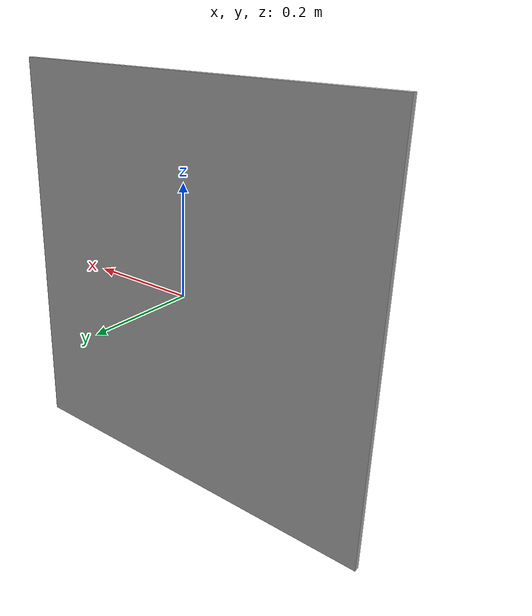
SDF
<?xml version="1.0" ?>
<sdf version="1.5">
  <model name="WayPoint10_prac2">
    <static>true</static>
    <link name="link">
      <pose>0 0 0 0 0 0</pose>
      <collision name="collision">
        <geometry>
          <box>
            <size>0.75 0.01 0.75</size>
          </box>
        </geometry>
      </collision>
      <visual name="visual">
        <geometry>
          <box>
            <size>0.75 0.01 0.75</size>
          </box>
        </geometry>
        <material>
          <script>
            <uri>model://WayPoint10_prac2/materials/scripts</uri>
            <uri>model://WayPoint10_prac2/materials/textures</uri>
            <name>vrc/WayPoint10_prac2</name>
          </script>
        </material>
      </visual>
    </link>
  </model>
</sdf>
